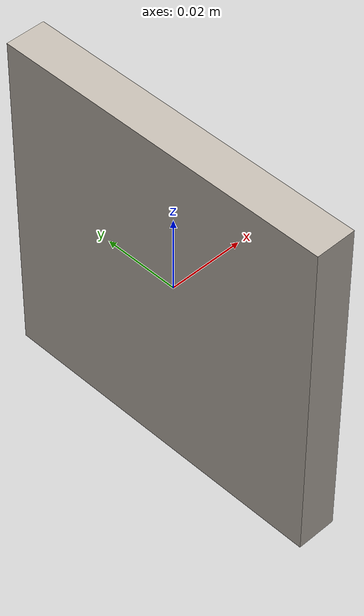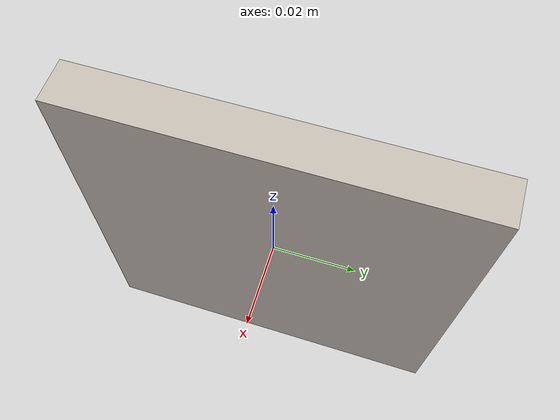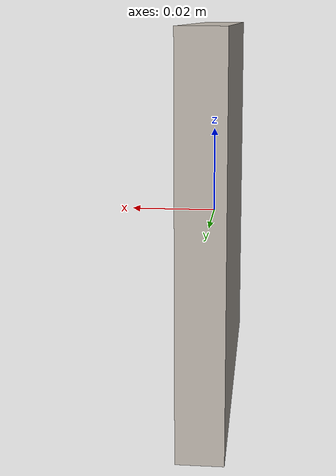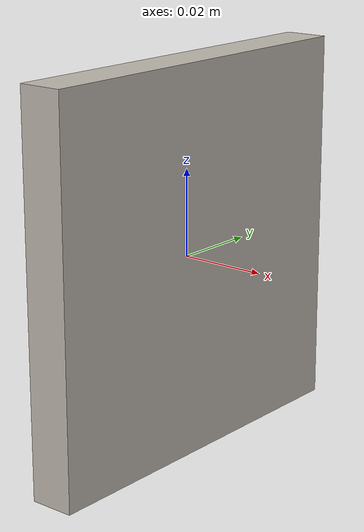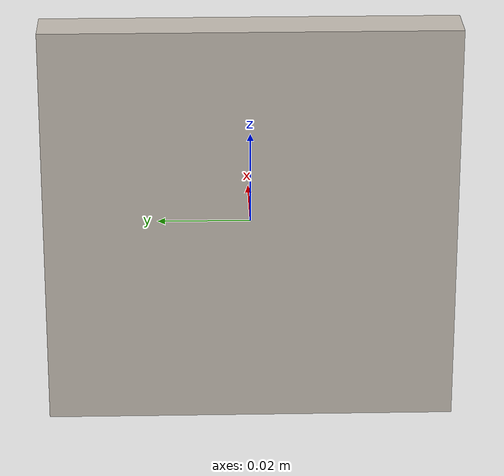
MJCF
<mujoco model="apriltag">
  <default>
    <default class="visual">
      <geom group="2" type="mesh" contype="0" conaffinity="0"/>
    </default>
    <default class="collision">
      <geom group="3" type="mesh"/>
    </default>
  </default>
  <asset>
    <texture type="2d" name="material_apriltag_0" file="material_apriltag_0.png"/>
    <material name="material_apriltag_0" texture="material_apriltag_0" specular="0.4000000000000001" shininess="0.001"/>
    <mesh file="apriltag.obj"/>
  </asset>
  <worldbody>
    <body name="apriltag">
      <geom material="material_apriltag_0" mesh="apriltag" class="visual"/>
      <geom mesh="apriltag" class="collision"/>
    </body>
  </worldbody>
</mujoco>
